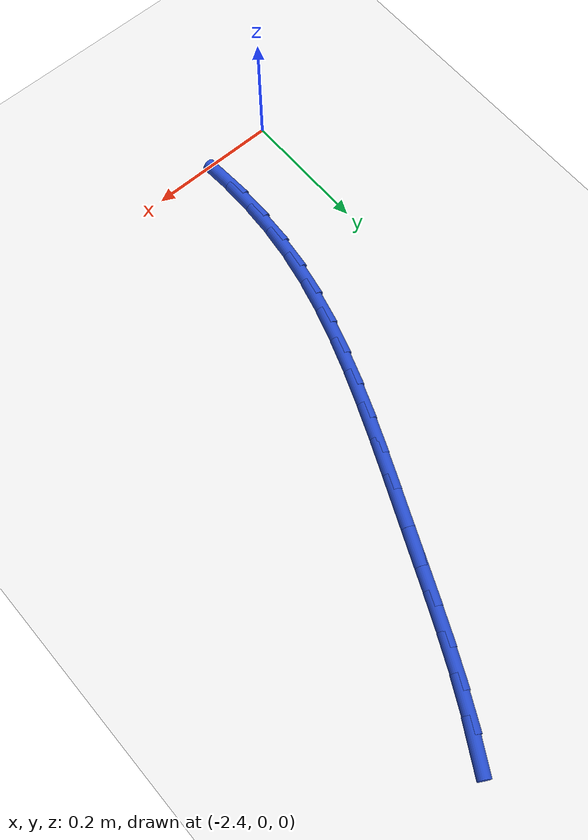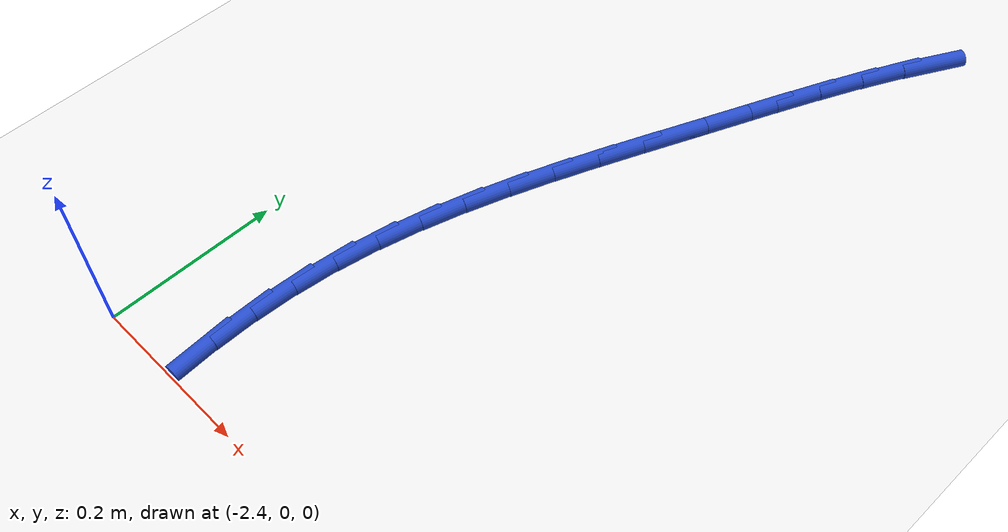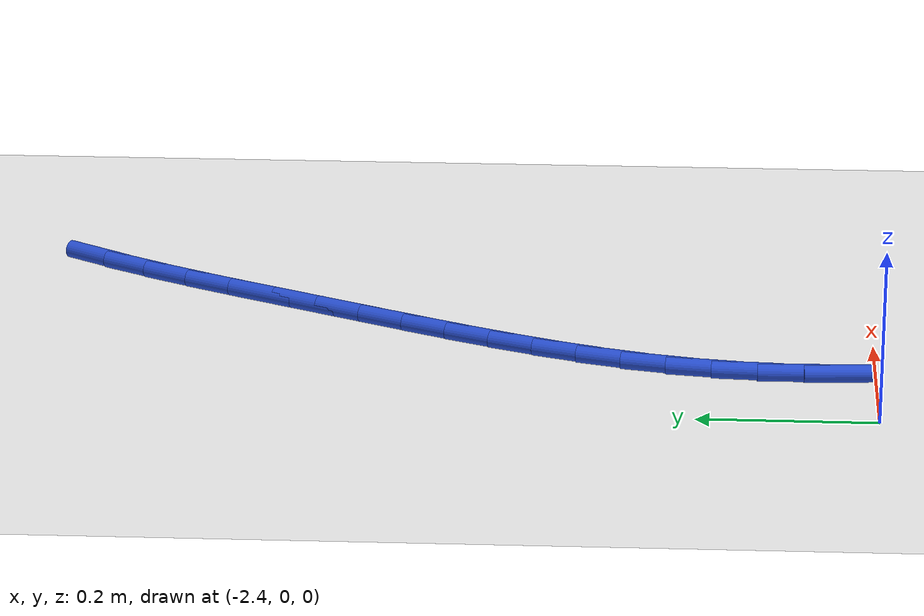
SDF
<sdf version="1.6">
 <world name="default">
  <model name="ground_plane">
   <static>1</static>
   <link name="link">
    <collision name="collision">
     <geometry><plane><normal>0 0 1</normal><size>100 100</size></plane></geometry>
     <surface><friction><ode><mu>100</mu><mu2>50</mu2></ode></friction></surface>
    </collision>
    <visual name="visual">
     <cast_shadows>0</cast_shadows>
     <geometry><plane><normal>0 0 1</normal><size>100 100</size></plane></geometry>
     <material>
      <script><uri>file://media/materials/scripts/gazebo.material</uri><name>Gazebo/WhiteGlow</name></script>
     </material>
    </visual>
   </link>
  </model>
  <model name="line">
   <link name="link_52">
    <pose>-2.0045201183816803 0.8971801749919444 0.01 0 1.57 1.059224163391763</pose>
    <collision name="collision">
     <geometry><cylinder><radius>0.01</radius><length>0.08</length></cylinder></geometry>
    </collision>
    <visual name="visual">
     <material>
      <script><name>Gazebo/Blue</name><uri>file://media/materials/scripts/gazebo.material</uri></script>
     </material>
     <geometry><cylinder><radius>0.01</radius><length>0.08</length></cylinder></geometry>
    </visual>
   </link>
   <link name="link_53">
    <pose>-2.031386372437734 0.8493264577075127 0.01 0 1.57 1.1021083485322976</pose>
    <collision name="collision">
     <geometry><cylinder><radius>0.01</radius><length>0.08</length></cylinder></geometry>
    </collision>
    <visual name="visual">
     <material>
      <script><name>Gazebo/Blue</name><uri>file://media/materials/scripts/gazebo.material</uri></script>
     </material>
     <geometry><cylinder><radius>0.01</radius><length>0.08</length></cylinder></geometry>
    </visual>
   </link>
   <link name="link_54">
    <pose>-2.05659603013309 0.7995361368329025 0.01 0 1.57 1.1327079535896718</pose>
    <collision name="collision">
     <geometry><cylinder><radius>0.01</radius><length>0.08</length></cylinder></geometry>
    </collision>
    <visual name="visual">
     <material>
      <script><name>Gazebo/Blue</name><uri>file://media/materials/scripts/gazebo.material</uri></script>
     </material>
     <geometry><cylinder><radius>0.01</radius><length>0.08</length></cylinder></geometry>
    </visual>
   </link>
   <link name="link_55">
    <pose>-2.0805441094597152 0.748413889908509 0.01 0 1.57 1.1519714500456442</pose>
    <collision name="collision">
     <geometry><cylinder><radius>0.01</radius><length>0.08</length></cylinder></geometry>
    </collision>
    <visual name="visual">
     <material>
      <script><name>Gazebo/Blue</name><uri>file://media/materials/scripts/gazebo.material</uri></script>
     </material>
     <geometry><cylinder><radius>0.01</radius><length>0.08</length></cylinder></geometry>
    </visual>
   </link>
   <link name="link_56">
    <pose>-2.1036256284095782 0.6965643944747287 0.01 0 1.57 1.1604517465477318</pose>
    <collision name="collision">
     <geometry><cylinder><radius>0.01</radius><length>0.08</length></cylinder></geometry>
    </collision>
    <visual name="visual">
     <material>
      <script><name>Gazebo/Blue</name><uri>file://media/materials/scripts/gazebo.material</uri></script>
     </material>
     <geometry><cylinder><radius>0.01</radius><length>0.08</length></cylinder></geometry>
    </visual>
   </link>
   <link name="link_57">
    <pose>-2.1262356049746445 0.6445923280719562 0.01 0 1.57 1.1592859076343291</pose>
    <collision name="collision">
     <geometry><cylinder><radius>0.01</radius><length>0.08</length></cylinder></geometry>
    </collision>
    <visual name="visual">
     <material>
      <script><name>Gazebo/Blue</name><uri>file://media/materials/scripts/gazebo.material</uri></script>
     </material>
     <geometry><cylinder><radius>0.01</radius><length>0.08</length></cylinder></geometry>
    </visual>
   </link>
   <link name="link_58">
    <pose>-2.148724704841484 0.5930624234870996 0.01 0 1.57 1.1590130175164648</pose>
    <collision name="collision">
     <geometry><cylinder><radius>0.01</radius><length>0.08</length></cylinder></geometry>
    </collision>
    <visual name="visual">
     <material>
      <script><name>Gazebo/Blue</name><uri>file://media/materials/scripts/gazebo.material</uri></script>
     </material>
     <geometry><cylinder><radius>0.01</radius><length>0.08</length></cylinder></geometry>
    </visual>
   </link>
   <link name="link_59">
    <pose>-2.1709750748412047 0.5421174541518946 0.01 0 1.57 1.1662025654143588</pose>
    <collision name="collision">
     <geometry><cylinder><radius>0.01</radius><length>0.08</length></cylinder></geometry>
    </collision>
    <visual name="visual">
     <material>
      <script><name>Gazebo/Blue</name><uri>file://media/materials/scripts/gazebo.material</uri></script>
     </material>
     <geometry><cylinder><radius>0.01</radius><length>0.08</length></cylinder></geometry>
    </visual>
   </link>
   <link name="link_60">
    <pose>-2.192587540796242 0.4916468290282597 0.01 0 1.57 1.1812494543171992</pose>
    <collision name="collision">
     <geometry><cylinder><radius>0.01</radius><length>0.08</length></cylinder></geometry>
    </collision>
    <visual name="visual">
     <material>
      <script><name>Gazebo/Blue</name><uri>file://media/materials/scripts/gazebo.material</uri></script>
     </material>
     <geometry><cylinder><radius>0.01</radius><length>0.08</length></cylinder></geometry>
    </visual>
   </link>
   <link name="link_61">
    <pose>-2.2131590971582265 0.44153650645336784 0.01 0 1.57 1.2045110507998458</pose>
    <collision name="collision">
     <geometry><cylinder><radius>0.01</radius><length>0.08</length></cylinder></geometry>
    </collision>
    <visual name="visual">
     <material>
      <script><name>Gazebo/Blue</name><uri>file://media/materials/scripts/gazebo.material</uri></script>
     </material>
     <geometry><cylinder><radius>0.01</radius><length>0.08</length></cylinder></geometry>
    </visual>
   </link>
   <link name="link_62">
    <pose>-2.2322867383787863 0.39167244476439356 0.01 0 1.57 1.2363700536269717</pose>
    <collision name="collision">
     <geometry><cylinder><radius>0.01</radius><length>0.08</length></cylinder></geometry>
    </collision>
    <visual name="visual">
     <material>
      <script><name>Gazebo/Blue</name><uri>file://media/materials/scripts/gazebo.material</uri></script>
     </material>
     <geometry><cylinder><radius>0.01</radius><length>0.08</length></cylinder></geometry>
    </visual>
   </link>
   <link name="link_63">
    <pose>-2.249567458909552 0.34194060229850987 0.01 0 1.57 1.277187404085638</pose>
    <collision name="collision">
     <geometry><cylinder><radius>0.01</radius><length>0.08</length></cylinder></geometry>
    </collision>
    <visual name="visual">
     <material>
      <script><name>Gazebo/Blue</name><uri>file://media/materials/scripts/gazebo.material</uri></script>
     </material>
     <geometry><cylinder><radius>0.01</radius><length>0.08</length></cylinder></geometry>
    </visual>
   </link>
   <link name="link_64">
    <pose>-2.2645982532021516 0.2922269373928913 0.01 0 1.57 1.327226247220401</pose>
    <collision name="collision">
     <geometry><cylinder><radius>0.01</radius><length>0.08</length></cylinder></geometry>
    </collision>
    <visual name="visual">
     <material>
      <script><name>Gazebo/Blue</name><uri>file://media/materials/scripts/gazebo.material</uri></script>
     </material>
     <geometry><cylinder><radius>0.01</radius><length>0.08</length></cylinder></geometry>
    </visual>
   </link>
   <link name="link_65">
    <pose>-2.2769761157082145 0.24241740838471137 0.01 0 1.57 1.3865440265792146</pose>
    <collision name="collision">
     <geometry><cylinder><radius>0.01</radius><length>0.08</length></cylinder></geometry>
    </collision>
    <visual name="visual">
     <material>
      <script><name>Gazebo/Blue</name><uri>file://media/materials/scripts/gazebo.material</uri></script>
     </material>
     <geometry><cylinder><radius>0.01</radius><length>0.08</length></cylinder></geometry>
    </visual>
   </link>
   <link name="link_66">
    <pose>-2.2862980408793696 0.19239797361114325 0.01 0 1.57 1.4530764467393782</pose>
    <collision name="collision">
     <geometry><cylinder><radius>0.01</radius><length>0.08</length></cylinder></geometry>
    </collision>
    <visual name="visual">
     <material>
      <script><name>Gazebo/Blue</name><uri>file://media/materials/scripts/gazebo.material</uri></script>
     </material>
     <geometry><cylinder><radius>0.01</radius><length>0.08</length></cylinder></geometry>
    </visual>
   </link>
   <link name="link_67">
    <pose>-2.292250319844443 0.14206868322147945 0.01 0 1.57 1.5177095136458807</pose>
    <collision name="collision">
     <geometry><cylinder><radius>0.01</radius><length>0.08</length></cylinder></geometry>
    </collision>
    <visual name="visual">
     <material>
      <script><name>Gazebo/Blue</name><uri>file://media/materials/scripts/gazebo.material</uri></script>
     </material>
     <geometry><cylinder><radius>0.01</radius><length>0.08</length></cylinder></geometry>
    </visual>
   </link>
   <link name="link_68">
    <pose>-2.2949428775949183 0.0913964405670196 0.01 0 1.57 -1.5642953548803942</pose>
    <collision name="collision">
     <geometry><cylinder><radius>0.01</radius><length>0.08</length></cylinder></geometry>
    </collision>
    <visual name="visual">
     <material>
      <script><name>Gazebo/Blue</name><uri>file://media/materials/scripts/gazebo.material</uri></script>
     </material>
     <geometry><cylinder><radius>0.01</radius><length>0.08</length></cylinder></geometry>
    </visual>
   </link>
   <link name="link_69">
    <pose>-2.2946111381626344 0.040367953866985266 0.01 0 1.57 -1.510156496471147</pose>
    <collision name="collision">
     <geometry><cylinder><radius>0.01</radius><length>0.08</length></cylinder></geometry>
    </collision>
    <visual name="visual">
     <material>
      <script><name>Gazebo/Blue</name><uri>file://media/materials/scripts/gazebo.material</uri></script>
     </material>
     <geometry><cylinder><radius>0.01</radius><length>0.08</length></cylinder></geometry>
    </visual>
   </link>
  </model>
 </world>
</sdf>
